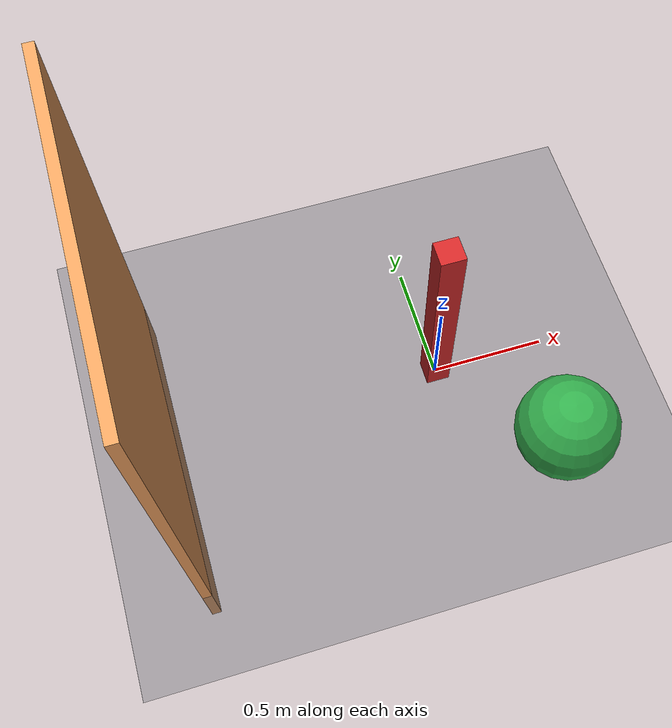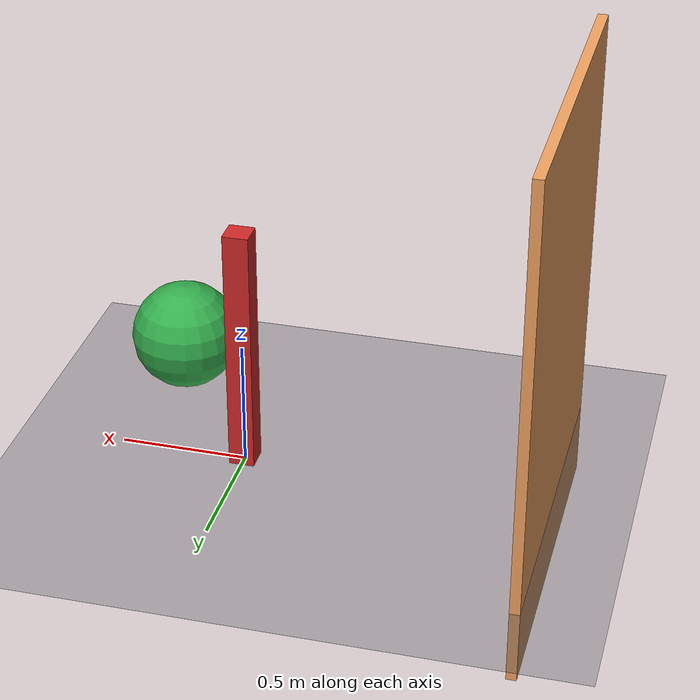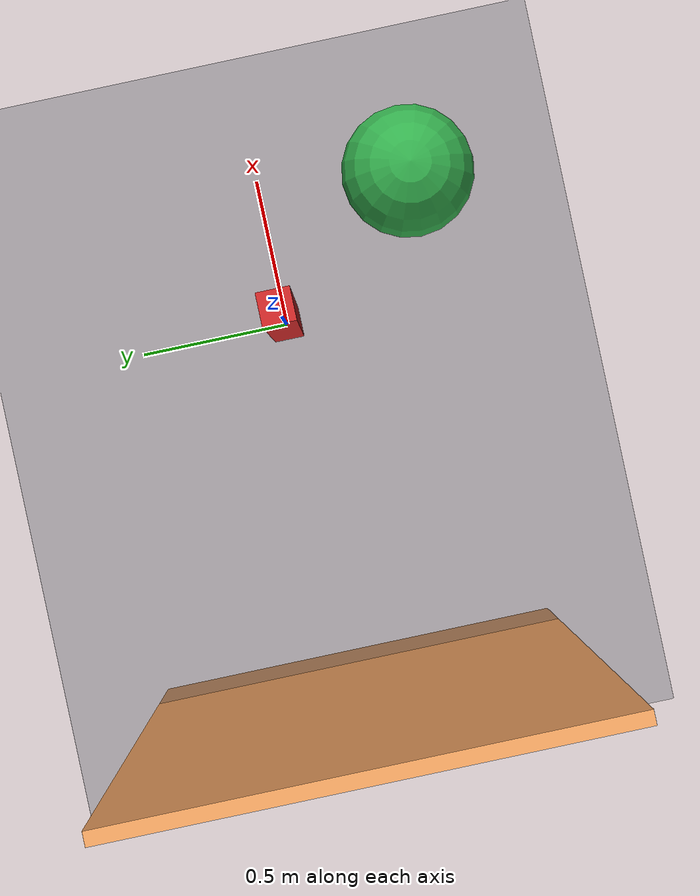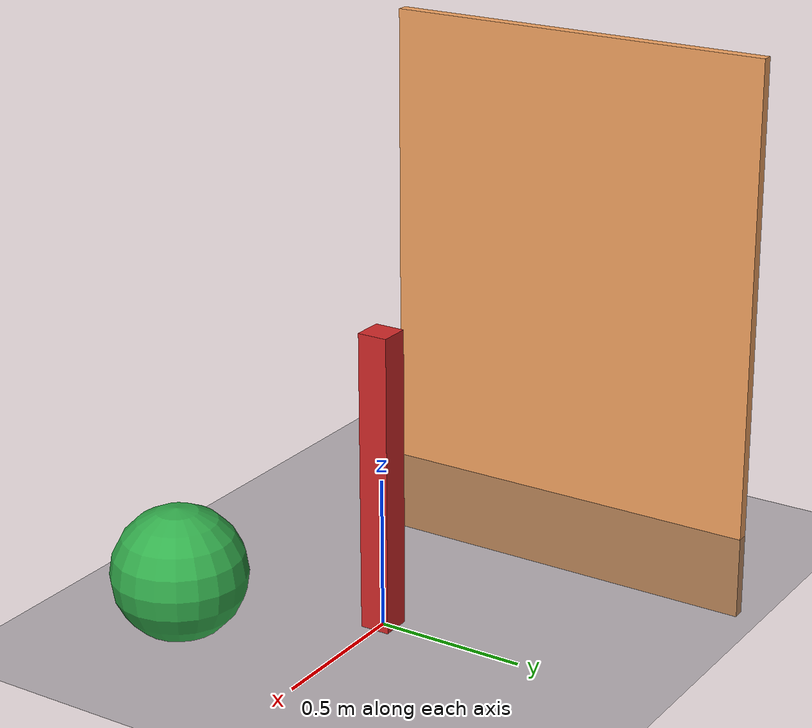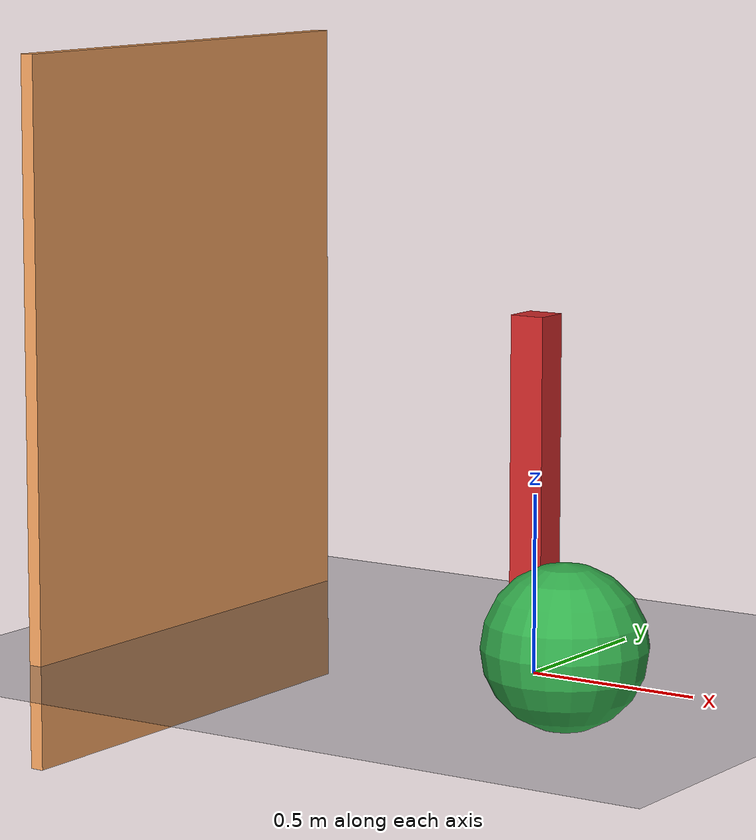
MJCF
<mujoco model="Reflection: PBR metallic + ORM">

  <asset>
    <texture name="sky" type="skybox" builtin="gradient" rgb1=".18 .22 .30" rgb2=".55 .58 .62" width="32" height="512"/>
    <texture name="ibl" type="cube" builtin="gradient" rgb1=".32 .35 .40" rgb2=".58 .56 .52" width="32" height="32"/>
    <texture name="grid" type="2d" builtin="checker" rgb1=".05 .06 .09" rgb2=".42 .45 .50" width="300" height="300"/>
    <!-- packed occlusion(R)/roughness(G)/metallic(B): smooth metal -->
    <texture name="orm" type="2d" builtin="flat" rgb1="1 .3 1" width="8" height="8"/>
    <material name="floor"  texture="grid" texrepeat="3 3" texuniform="true" metallic=".5" roughness=".25" reflectance=".35"/>
    <material name="mirror" rgba=".95 .64 .38 1" reflectance=".9">
      <layer texture="orm" role="orm"/>
    </material>
    <material name="post"   rgba=".82 .16 .16 1"/>
    <material name="ball"   rgba=".20 .68 .30 1"/>
  </asset>

  <worldbody>
  <camera name="default" pos="3.515 -1.039 1.177" xyaxes="0.229 0.973 0.000 -0.102 0.024 0.995"/>
    <light pos="1.5 0.6 2.6" dir="-0.6 -0.2 -2" cutoff="55" range="20" intensity="800000"
           castshadow="true" ambient=".1 .1 .12" type="spot"/>
    <light type="image" texture="ibl" intensity="8000"/>

    <geom name="floor"  type="plane" size="3 3 .1" material="floor"/>
    <geom name="mirror" type="box"   size="1.0 0.7 0.02" material="mirror" pos="-1.2 0 0.7" zaxis="1 0 0"/>
    <geom name="post"   type="box"    material="post" size=".05 .05 .5" pos="0 0 0.5"/>
    <geom name="ball"   type="sphere" material="ball" size=".22" pos="0.4 -0.5 0.22"/>
  </worldbody>
</mujoco>
